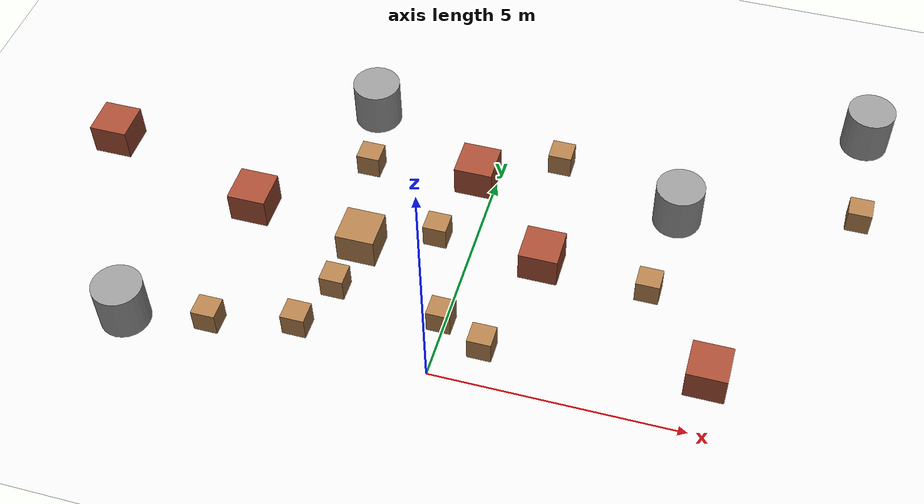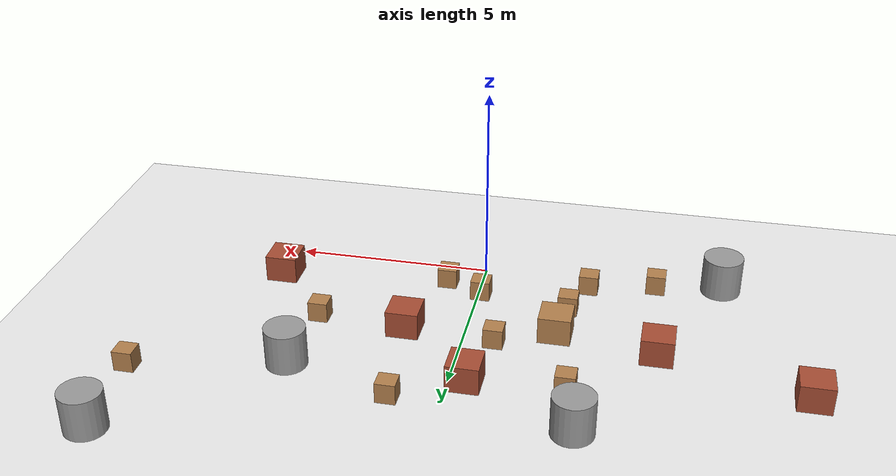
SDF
<sdf version="1.6">
 <world name="default">
  <model name="ground_plane">
   <static>1</static>
   <link name="link">
    <collision name="collision">
     <geometry><plane><normal>0 0 1</normal><size>100 100</size></plane></geometry>
     <surface><friction><ode><mu>100</mu><mu2>50</mu2></ode></friction></surface>
    </collision>
    <visual name="visual">
     <cast_shadows>0</cast_shadows>
     <geometry><plane><normal>0 0 1</normal><size>100 100</size></plane></geometry>
     <material>
      <script><uri>file://media/materials/scripts/gazebo.material</uri><name>Gazebo/White</name></script>
     </material>
    </visual>
   </link>
  </model>
  <model name="Box">
   <link name="link">
    <inertial>
     <mass>0.01</mass>
     <inertia>
      <ixx>0.00455697</ixx>
      <ixy>0</ixy>
      <ixz>0</ixz>
      <iyy>0.00475558</iyy>
      <iyz>0</iyz>
      <izz>0.00426137</izz>
     </inertia>
    </inertial>
    <visual name="visual">
     <geometry><box><size>0.483208 0.461193 0.514245</size></box></geometry>
     <material>
      <script><name>Gazebo/WoodFloor</name><uri>file://media/materials/scripts/gazebo.material</uri></script>
      <ambient>0.3 0.3 0.3 1</ambient>
      <diffuse>0.7 0.7 0.7 1</diffuse>
      <specular>0.01 0.01 0.01 1</specular>
      <emissive>0 0 0 1</emissive>
     </material>
    </visual>
    <collision name="collision">
     <geometry><box><size>0.483208 0.461193 0.514245</size></box></geometry>
     <surface>
      <friction>
       <ode><mu>1</mu><mu2>1</mu2><fdir1>0 0 0</fdir1><slip1>0</slip1><slip2>0</slip2></ode>
       <torsional>
        <coefficient>1</coefficient>
        <patch_radius>0</patch_radius>
        <surface_radius>0</surface_radius>
        <use_patch_radius>1</use_patch_radius>
        <ode><slip>0</slip></ode>
       </torsional>
      </friction>
      <bounce><restitution_coefficient>0</restitution_coefficient><threshold>1e+06</threshold></bounce>
      <contact>
       <collide_without_contact>0</collide_without_contact>
       <collide_without_contact_bitmask>1</collide_without_contact_bitmask>
       <collide_bitmask>1</collide_bitmask>
       <ode>
        <soft_cfm>0</soft_cfm>
        <soft_erp>0.2</soft_erp>
        <kp>1e+13</kp>
        <kd>1</kd>
        <max_vel>0.01</max_vel>
        <min_depth>0</min_depth>
       </ode>
       <bullet>
        <split_impulse>1</split_impulse>
        <split_impulse_penetration_threshold>-0.01</split_impulse_penetration_threshold>
        <soft_cfm>0</soft_cfm>
        <soft_erp>0.2</soft_erp>
        <kp>1e+13</kp>
        <kd>1</kd>
       </bullet>
      </contact>
     </surface>
    </collision>
   </link>
   <static>0</static>
   <pose>-2.73541 0.399797 0.257122 0 -0 0</pose>
  </model>
  <model name="Box_1">
   <link name="link">
    <inertial>
     <mass>0.01</mass>
     <inertia>
      <ixx>0.00455697</ixx>
      <ixy>0</ixy>
      <ixz>0</ixz>
      <iyy>0.00475558</iyy>
      <iyz>0</iyz>
      <izz>0.00426137</izz>
     </inertia>
    </inertial>
    <visual name="visual">
     <geometry><box><size>0.483208 0.461193 0.514245</size></box></geometry>
     <material>
      <script><name>Gazebo/WoodFloor</name><uri>file://media/materials/scripts/gazebo.material</uri></script>
      <ambient>0.3 0.3 0.3 1</ambient>
      <diffuse>0.7 0.7 0.7 1</diffuse>
      <specular>0.01 0.01 0.01 1</specular>
      <emissive>0 0 0 1</emissive>
     </material>
    </visual>
    <collision name="collision">
     <geometry><box><size>0.483208 0.461193 0.514245</size></box></geometry>
     <surface>
      <friction>
       <ode><mu>1</mu><mu2>1</mu2><fdir1>0 0 0</fdir1><slip1>0</slip1><slip2>0</slip2></ode>
       <torsional>
        <coefficient>1</coefficient>
        <patch_radius>0</patch_radius>
        <surface_radius>0</surface_radius>
        <use_patch_radius>1</use_patch_radius>
        <ode><slip>0</slip></ode>
       </torsional>
      </friction>
      <bounce><restitution_coefficient>0</restitution_coefficient><threshold>1e+06</threshold></bounce>
      <contact>
       <collide_without_contact>0</collide_without_contact>
       <collide_without_contact_bitmask>1</collide_without_contact_bitmask>
       <collide_bitmask>1</collide_bitmask>
       <ode>
        <soft_cfm>0</soft_cfm>
        <soft_erp>0.2</soft_erp>
        <kp>1e+13</kp>
        <kd>1</kd>
        <max_vel>0.01</max_vel>
        <min_depth>0</min_depth>
       </ode>
       <bullet>
        <split_impulse>1</split_impulse>
        <split_impulse_penetration_threshold>-0.01</split_impulse_penetration_threshold>
        <soft_cfm>0</soft_cfm>
        <soft_erp>0.2</soft_erp>
        <kp>1e+13</kp>
        <kd>1</kd>
       </bullet>
      </contact>
     </surface>
    </collision>
   </link>
   <static>0</static>
   <pose>0.855063 0.802123 0.257122 0 -0 0</pose>
  </model>
  <model name="HeavyBox">
   <link name="link">
    <inertial>
     <mass>0.0579948</mass>
     <inertia>
      <ixx>0.0402452</ixx>
      <ixy>0</ixy>
      <ixz>0</ixz>
      <iyy>0.0399236</iyy>
      <iyz>0</iyz>
      <izz>0.0461707</izz>
     </inertia>
    </inertial>
    <visual name="visual">
     <geometry><box><size>0.79482 0.800386 0.684447</size></box></geometry>
     <material>
      <script><name>Gazebo/WoodFloor</name><uri>file://media/materials/scripts/gazebo.material</uri></script>
      <ambient>0.3 0.3 0.3 1</ambient>
      <diffuse>0.7 0.7 0.7 1</diffuse>
      <specular>0.01 0.01 0.01 1</specular>
      <emissive>0 0 0 1</emissive>
     </material>
    </visual>
    <collision name="collision">
     <geometry><box><size>0.79482 0.800386 0.684447</size></box></geometry>
     <surface>
      <friction>
       <ode><mu>1</mu><mu2>1</mu2><fdir1>0 0 0</fdir1><slip1>0</slip1><slip2>0</slip2></ode>
       <torsional>
        <coefficient>1</coefficient>
        <patch_radius>0</patch_radius>
        <surface_radius>0</surface_radius>
        <use_patch_radius>1</use_patch_radius>
        <ode><slip>0</slip></ode>
       </torsional>
      </friction>
      <bounce><restitution_coefficient>0</restitution_coefficient><threshold>1e+06</threshold></bounce>
      <contact>
       <collide_without_contact>0</collide_without_contact>
       <collide_without_contact_bitmask>1</collide_without_contact_bitmask>
       <collide_bitmask>1</collide_bitmask>
       <ode>
        <soft_cfm>0</soft_cfm>
        <soft_erp>0.2</soft_erp>
        <kp>1e+13</kp>
        <kd>1</kd>
        <max_vel>0.01</max_vel>
        <min_depth>0</min_depth>
       </ode>
       <bullet>
        <split_impulse>1</split_impulse>
        <split_impulse_penetration_threshold>-0.01</split_impulse_penetration_threshold>
        <soft_cfm>0</soft_cfm>
        <soft_erp>0.2</soft_erp>
        <kp>1e+13</kp>
        <kd>1</kd>
       </bullet>
      </contact>
     </surface>
    </collision>
   </link>
   <static>0</static>
   <pose>-2.17372 2.61263 0.342223 0 -0 0</pose>
  </model>
  <model name="Box_2">
   <link name="link">
    <inertial>
     <mass>0.01</mass>
     <inertia>
      <ixx>0.00455697</ixx>
      <ixy>0</ixy>
      <ixz>0</ixz>
      <iyy>0.00475558</iyy>
      <iyz>0</iyz>
      <izz>0.00426137</izz>
     </inertia>
    </inertial>
    <visual name="visual">
     <geometry><box><size>0.483208 0.461193 0.514245</size></box></geometry>
     <material>
      <script><name>Gazebo/WoodFloor</name><uri>file://media/materials/scripts/gazebo.material</uri></script>
      <ambient>0.3 0.3 0.3 1</ambient>
      <diffuse>0.7 0.7 0.7 1</diffuse>
      <specular>0.01 0.01 0.01 1</specular>
      <emissive>0 0 0 1</emissive>
     </material>
    </visual>
    <collision name="collision">
     <geometry><box><size>0.483208 0.461193 0.514245</size></box></geometry>
     <surface>
      <friction>
       <ode><mu>1</mu><mu2>1</mu2><fdir1>0 0 0</fdir1><slip1>0</slip1><slip2>0</slip2></ode>
       <torsional>
        <coefficient>1</coefficient>
        <patch_radius>0</patch_radius>
        <surface_radius>0</surface_radius>
        <use_patch_radius>1</use_patch_radius>
        <ode><slip>0</slip></ode>
       </torsional>
      </friction>
      <bounce><restitution_coefficient>0</restitution_coefficient><threshold>1e+06</threshold></bounce>
      <contact>
       <collide_without_contact>0</collide_without_contact>
       <collide_without_contact_bitmask>1</collide_without_contact_bitmask>
       <collide_bitmask>1</collide_bitmask>
       <ode>
        <soft_cfm>0</soft_cfm>
        <soft_erp>0.2</soft_erp>
        <kp>1e+13</kp>
        <kd>1</kd>
        <max_vel>0.01</max_vel>
        <min_depth>0</min_depth>
       </ode>
       <bullet>
        <split_impulse>1</split_impulse>
        <split_impulse_penetration_threshold>-0.01</split_impulse_penetration_threshold>
        <soft_cfm>0</soft_cfm>
        <soft_erp>0.2</soft_erp>
        <kp>1e+13</kp>
        <kd>1</kd>
       </bullet>
      </contact>
     </surface>
    </collision>
   </link>
   <static>0</static>
   <pose>-2.33619 1.48041 0.257122 0 -0 0</pose>
  </model>
  <model name="Box_3">
   <link name="link">
    <inertial>
     <mass>0.01</mass>
     <inertia>
      <ixx>0.00455697</ixx>
      <ixy>0</ixy>
      <ixz>0</ixz>
      <iyy>0.00475558</iyy>
      <iyz>0</iyz>
      <izz>0.00426137</izz>
     </inertia>
    </inertial>
    <visual name="visual">
     <geometry><box><size>0.483208 0.461193 0.514245</size></box></geometry>
     <material>
      <script><name>Gazebo/WoodFloor</name><uri>file://media/materials/scripts/gazebo.material</uri></script>
      <ambient>0.3 0.3 0.3 1</ambient>
      <diffuse>0.7 0.7 0.7 1</diffuse>
      <specular>0.01 0.01 0.01 1</specular>
      <emissive>0 0 0 1</emissive>
     </material>
    </visual>
    <collision name="collision">
     <geometry><box><size>0.483208 0.461193 0.514245</size></box></geometry>
     <surface>
      <friction>
       <ode><mu>1</mu><mu2>1</mu2><fdir1>0 0 0</fdir1><slip1>0</slip1><slip2>0</slip2></ode>
       <torsional>
        <coefficient>1</coefficient>
        <patch_radius>0</patch_radius>
        <surface_radius>0</surface_radius>
        <use_patch_radius>1</use_patch_radius>
        <ode><slip>0</slip></ode>
       </torsional>
      </friction>
      <bounce><restitution_coefficient>0</restitution_coefficient><threshold>1e+06</threshold></bounce>
      <contact>
       <collide_without_contact>0</collide_without_contact>
       <collide_without_contact_bitmask>1</collide_without_contact_bitmask>
       <collide_bitmask>1</collide_bitmask>
       <ode>
        <soft_cfm>0</soft_cfm>
        <soft_erp>0.2</soft_erp>
        <kp>1e+13</kp>
        <kd>1</kd>
        <max_vel>0.01</max_vel>
        <min_depth>0</min_depth>
       </ode>
       <bullet>
        <split_impulse>1</split_impulse>
        <split_impulse_penetration_threshold>-0.01</split_impulse_penetration_threshold>
        <soft_cfm>0</soft_cfm>
        <soft_erp>0.2</soft_erp>
        <kp>1e+13</kp>
        <kd>1</kd>
       </bullet>
      </contact>
     </surface>
    </collision>
   </link>
   <static>0</static>
   <pose>-0.078578 1.21617 0.257122 0 -0 0</pose>
  </model>
  <model name="HeavyBox_3">
   <link name="link">
    <inertial>
     <mass>2</mass>
     <inertia>
      <ixx>0.0402452</ixx>
      <ixy>0</ixy>
      <ixz>0</ixz>
      <iyy>0.0399236</iyy>
      <iyz>0</iyz>
      <izz>0.0461707</izz>
     </inertia>
    </inertial>
    <visual name="visual">
     <geometry><box><size>0.79482 0.800386 0.684447</size></box></geometry>
     <material>
      <script><name>Gazebo/Bricks</name><uri>file://media/materials/scripts/gazebo.material</uri></script>
      <ambient>0.3 0.3 0.3 1</ambient>
      <diffuse>0.7 0.7 0.7 1</diffuse>
      <specular>0.01 0.01 0.01 1</specular>
      <emissive>0 0 0 1</emissive>
     </material>
    </visual>
    <collision name="collision">
     <geometry><box><size>0.79482 0.800386 0.684447</size></box></geometry>
     <surface>
      <friction>
       <ode><mu>1</mu><mu2>1</mu2><fdir1>0 0 0</fdir1><slip1>0</slip1><slip2>0</slip2></ode>
       <torsional>
        <coefficient>1</coefficient>
        <patch_radius>0</patch_radius>
        <surface_radius>0</surface_radius>
        <use_patch_radius>1</use_patch_radius>
        <ode><slip>0</slip></ode>
       </torsional>
      </friction>
      <bounce><restitution_coefficient>0</restitution_coefficient><threshold>1e+06</threshold></bounce>
      <contact>
       <collide_without_contact>0</collide_without_contact>
       <collide_without_contact_bitmask>1</collide_without_contact_bitmask>
       <collide_bitmask>1</collide_bitmask>
       <ode>
        <soft_cfm>0</soft_cfm>
        <soft_erp>0.2</soft_erp>
        <kp>1e+13</kp>
        <kd>1</kd>
        <max_vel>0.01</max_vel>
        <min_depth>0</min_depth>
       </ode>
       <bullet>
        <split_impulse>1</split_impulse>
        <split_impulse_penetration_threshold>-0.01</split_impulse_penetration_threshold>
        <soft_cfm>0</soft_cfm>
        <soft_erp>0.2</soft_erp>
        <kp>1e+13</kp>
        <kd>1</kd>
       </bullet>
      </contact>
     </surface>
    </collision>
   </link>
   <static>0</static>
   <pose>-0.407093 4.96879 0.342224 -0 -1e-06 9.8e-05</pose>
  </model>
  <model name="HeavyBox_4">
   <link name="link">
    <inertial>
     <mass>2</mass>
     <inertia>
      <ixx>0.0402452</ixx>
      <ixy>0</ixy>
      <ixz>0</ixz>
      <iyy>0.0399236</iyy>
      <iyz>0</iyz>
      <izz>0.0461707</izz>
     </inertia>
    </inertial>
    <visual name="visual">
     <geometry><box><size>0.79482 0.800386 0.684447</size></box></geometry>
     <material>
      <script><name>Gazebo/Bricks</name><uri>file://media/materials/scripts/gazebo.material</uri></script>
      <ambient>0.3 0.3 0.3 1</ambient>
      <diffuse>0.7 0.7 0.7 1</diffuse>
      <specular>0.01 0.01 0.01 1</specular>
      <emissive>0 0 0 1</emissive>
     </material>
    </visual>
    <collision name="collision">
     <geometry><box><size>0.79482 0.800386 0.684447</size></box></geometry>
     <surface>
      <friction>
       <ode><mu>1</mu><mu2>1</mu2><fdir1>0 0 0</fdir1><slip1>0</slip1><slip2>0</slip2></ode>
       <torsional>
        <coefficient>1</coefficient>
        <patch_radius>0</patch_radius>
        <surface_radius>0</surface_radius>
        <use_patch_radius>1</use_patch_radius>
        <ode><slip>0</slip></ode>
       </torsional>
      </friction>
      <bounce><restitution_coefficient>0</restitution_coefficient><threshold>1e+06</threshold></bounce>
      <contact>
       <collide_without_contact>0</collide_without_contact>
       <collide_without_contact_bitmask>1</collide_without_contact_bitmask>
       <collide_bitmask>1</collide_bitmask>
       <ode>
        <soft_cfm>0</soft_cfm>
        <soft_erp>0.2</soft_erp>
        <kp>1e+13</kp>
        <kd>1</kd>
        <max_vel>0.01</max_vel>
        <min_depth>0</min_depth>
       </ode>
       <bullet>
        <split_impulse>1</split_impulse>
        <split_impulse_penetration_threshold>-0.01</split_impulse_penetration_threshold>
        <soft_cfm>0</soft_cfm>
        <soft_erp>0.2</soft_erp>
        <kp>1e+13</kp>
        <kd>1</kd>
       </bullet>
      </contact>
     </surface>
    </collision>
   </link>
   <static>0</static>
   <pose>1.45059 3.10798 0.342219 -0 1.1e-05 9.5e-05</pose>
  </model>
  <model name="HighRock_0">
   <link name="link_0">
    <inertial>
     <mass>5</mass>
     <inertia><ixx>0.145833</ixx><ixy>0</ixy><ixz>0</ixz><iyy>0.145833</iyy><iyz>0</iyz><izz>0.125</izz></inertia>
    </inertial>
    <visual name="visual">
     <geometry><cylinder><radius>0.5</radius><length>1</length></cylinder></geometry>
     <material>
      <lighting>1</lighting>
      <script><uri>file://media/materials/scripts/gazebo.material</uri><name>Gazebo/Gray</name></script>
      <ambient>0.3 0.3 0.3 1</ambient>
      <diffuse>0.7 0.7 0.7 1</diffuse>
      <specular>0.01 0.01 0.01 1</specular>
      <emissive>0 0 0 1</emissive>
     </material>
    </visual>
    <collision name="collision">
     <geometry><cylinder><radius>0.5</radius><length>1</length></cylinder></geometry>
     <surface>
      <friction>
       <ode><mu>1</mu><mu2>1</mu2><fdir1>0 0 0</fdir1><slip1>0</slip1><slip2>0</slip2></ode>
       <torsional>
        <coefficient>1</coefficient>
        <patch_radius>0</patch_radius>
        <surface_radius>0</surface_radius>
        <use_patch_radius>1</use_patch_radius>
        <ode><slip>0</slip></ode>
       </torsional>
      </friction>
      <bounce><restitution_coefficient>0</restitution_coefficient><threshold>1e+06</threshold></bounce>
      <contact>
       <collide_without_contact>0</collide_without_contact>
       <collide_without_contact_bitmask>1</collide_without_contact_bitmask>
       <collide_bitmask>1</collide_bitmask>
       <ode>
        <soft_cfm>0</soft_cfm>
        <soft_erp>0.2</soft_erp>
        <kp>1e+13</kp>
        <kd>1</kd>
        <max_vel>0.01</max_vel>
        <min_depth>0</min_depth>
       </ode>
       <bullet>
        <split_impulse>1</split_impulse>
        <split_impulse_penetration_threshold>-0.01</split_impulse_penetration_threshold>
        <soft_cfm>0</soft_cfm>
        <soft_erp>0.2</soft_erp>
        <kp>1e+13</kp>
        <kd>1</kd>
       </bullet>
      </contact>
     </surface>
    </collision>
   </link>
   <static>0</static>
   <pose>-6.0472 -0.275243 0.499991 -1e-06 1e-06 -1e-06</pose>
  </model>
  <model name="HighRock_2">
   <link name="link_0">
    <inertial>
     <mass>5</mass>
     <inertia><ixx>0.145833</ixx><ixy>0</ixy><ixz>0</ixz><iyy>0.145833</iyy><iyz>0</iyz><izz>0.125</izz></inertia>
    </inertial>
    <visual name="visual">
     <geometry><cylinder><radius>0.5</radius><length>1</length></cylinder></geometry>
     <material>
      <lighting>1</lighting>
      <script><uri>file://media/materials/scripts/gazebo.material</uri><name>Gazebo/Gray</name></script>
      <ambient>0.3 0.3 0.3 1</ambient>
      <diffuse>0.7 0.7 0.7 1</diffuse>
      <specular>0.01 0.01 0.01 1</specular>
      <emissive>0 0 0 1</emissive>
     </material>
    </visual>
    <collision name="collision">
     <geometry><cylinder><radius>0.5</radius><length>1</length></cylinder></geometry>
     <surface>
      <friction>
       <ode><mu>1</mu><mu2>1</mu2><fdir1>0 0 0</fdir1><slip1>0</slip1><slip2>0</slip2></ode>
       <torsional>
        <coefficient>1</coefficient>
        <patch_radius>0</patch_radius>
        <surface_radius>0</surface_radius>
        <use_patch_radius>1</use_patch_radius>
        <ode><slip>0</slip></ode>
       </torsional>
      </friction>
      <bounce><restitution_coefficient>0</restitution_coefficient><threshold>1e+06</threshold></bounce>
      <contact>
       <collide_without_contact>0</collide_without_contact>
       <collide_without_contact_bitmask>1</collide_without_contact_bitmask>
       <collide_bitmask>1</collide_bitmask>
       <ode>
        <soft_cfm>0</soft_cfm>
        <soft_erp>0.2</soft_erp>
        <kp>1e+13</kp>
        <kd>1</kd>
        <max_vel>0.01</max_vel>
        <min_depth>0</min_depth>
       </ode>
       <bullet>
        <split_impulse>1</split_impulse>
        <split_impulse_penetration_threshold>-0.01</split_impulse_penetration_threshold>
        <soft_cfm>0</soft_cfm>
        <soft_erp>0.2</soft_erp>
        <kp>1e+13</kp>
        <kd>1</kd>
       </bullet>
      </contact>
     </surface>
    </collision>
   </link>
   <static>0</static>
   <pose>3.82885 5.04476 0.499991 -1e-06 -0 -1e-06</pose>
  </model>
  <model name="HighRock_3">
   <link name="link_0">
    <inertial>
     <mass>5</mass>
     <inertia><ixx>0.145833</ixx><ixy>0</ixy><ixz>0</ixz><iyy>0.145833</iyy><iyz>0</iyz><izz>0.125</izz></inertia>
    </inertial>
    <visual name="visual">
     <geometry><cylinder><radius>0.5</radius><length>1</length></cylinder></geometry>
     <material>
      <lighting>1</lighting>
      <script><uri>file://media/materials/scripts/gazebo.material</uri><name>Gazebo/Gray</name></script>
      <ambient>0.3 0.3 0.3 1</ambient>
      <diffuse>0.7 0.7 0.7 1</diffuse>
      <specular>0.01 0.01 0.01 1</specular>
      <emissive>0 0 0 1</emissive>
     </material>
    </visual>
    <collision name="collision">
     <geometry><cylinder><radius>0.5</radius><length>1</length></cylinder></geometry>
     <surface>
      <friction>
       <ode><mu>1</mu><mu2>1</mu2><fdir1>0 0 0</fdir1><slip1>0</slip1><slip2>0</slip2></ode>
       <torsional>
        <coefficient>1</coefficient>
        <patch_radius>0</patch_radius>
        <surface_radius>0</surface_radius>
        <use_patch_radius>1</use_patch_radius>
        <ode><slip>0</slip></ode>
       </torsional>
      </friction>
      <bounce><restitution_coefficient>0</restitution_coefficient><threshold>1e+06</threshold></bounce>
      <contact>
       <collide_without_contact>0</collide_without_contact>
       <collide_without_contact_bitmask>1</collide_without_contact_bitmask>
       <collide_bitmask>1</collide_bitmask>
       <ode>
        <soft_cfm>0</soft_cfm>
        <soft_erp>0.2</soft_erp>
        <kp>1e+13</kp>
        <kd>1</kd>
        <max_vel>0.01</max_vel>
        <min_depth>0</min_depth>
       </ode>
       <bullet>
        <split_impulse>1</split_impulse>
        <split_impulse_penetration_threshold>-0.01</split_impulse_penetration_threshold>
        <soft_cfm>0</soft_cfm>
        <soft_erp>0.2</soft_erp>
        <kp>1e+13</kp>
        <kd>1</kd>
       </bullet>
      </contact>
     </surface>
    </collision>
   </link>
   <static>0</static>
   <pose>-3.03058 6.26791 0.499999 0 0 -1e-06</pose>
  </model>
  <model name="HeavyBox_5">
   <link name="link">
    <inertial>
     <mass>2</mass>
     <inertia>
      <ixx>0.0402452</ixx>
      <ixy>0</ixy>
      <ixz>0</ixz>
      <iyy>0.0399236</iyy>
      <iyz>0</iyz>
      <izz>0.0461707</izz>
     </inertia>
    </inertial>
    <visual name="visual">
     <geometry><box><size>0.79482 0.800386 0.684447</size></box></geometry>
     <material>
      <script><name>Gazebo/Bricks</name><uri>file://media/materials/scripts/gazebo.material</uri></script>
      <ambient>0.3 0.3 0.3 1</ambient>
      <diffuse>0.7 0.7 0.7 1</diffuse>
      <specular>0.01 0.01 0.01 1</specular>
      <emissive>0 0 0 1</emissive>
     </material>
    </visual>
    <collision name="collision">
     <geometry><box><size>0.79482 0.800386 0.684447</size></box></geometry>
     <surface>
      <friction>
       <ode><mu>1</mu><mu2>1</mu2><fdir1>0 0 0</fdir1><slip1>0</slip1><slip2>0</slip2></ode>
       <torsional>
        <coefficient>1</coefficient>
        <patch_radius>0</patch_radius>
        <surface_radius>0</surface_radius>
        <use_patch_radius>1</use_patch_radius>
        <ode><slip>0</slip></ode>
       </torsional>
      </friction>
      <bounce><restitution_coefficient>0</restitution_coefficient><threshold>1e+06</threshold></bounce>
      <contact>
       <collide_without_contact>0</collide_without_contact>
       <collide_without_contact_bitmask>1</collide_without_contact_bitmask>
       <collide_bitmask>1</collide_bitmask>
       <ode>
        <soft_cfm>0</soft_cfm>
        <soft_erp>0.2</soft_erp>
        <kp>1e+13</kp>
        <kd>1</kd>
        <max_vel>0.01</max_vel>
        <min_depth>0</min_depth>
       </ode>
       <bullet>
        <split_impulse>1</split_impulse>
        <split_impulse_penetration_threshold>-0.01</split_impulse_penetration_threshold>
        <soft_cfm>0</soft_cfm>
        <soft_erp>0.2</soft_erp>
        <kp>1e+13</kp>
        <kd>1</kd>
       </bullet>
      </contact>
     </surface>
    </collision>
   </link>
   <static>0</static>
   <pose>-4.63867 3.03846 0.342224 0 -1e-06 7.1e-05</pose>
  </model>
  <model name="HeavyBox_7">
   <link name="link">
    <inertial>
     <mass>2</mass>
     <inertia>
      <ixx>0.0402452</ixx>
      <ixy>0</ixy>
      <ixz>0</ixz>
      <iyy>0.0399236</iyy>
      <iyz>0</iyz>
      <izz>0.0461707</izz>
     </inertia>
    </inertial>
    <visual name="visual">
     <geometry><box><size>0.79482 0.800386 0.684447</size></box></geometry>
     <material>
      <script><name>Gazebo/Bricks</name><uri>file://media/materials/scripts/gazebo.material</uri></script>
      <ambient>0.3 0.3 0.3 1</ambient>
      <diffuse>0.7 0.7 0.7 1</diffuse>
      <specular>0.01 0.01 0.01 1</specular>
      <emissive>0 0 0 1</emissive>
     </material>
    </visual>
    <collision name="collision">
     <geometry><box><size>0.79482 0.800386 0.684447</size></box></geometry>
     <surface>
      <friction>
       <ode><mu>1</mu><mu2>1</mu2><fdir1>0 0 0</fdir1><slip1>0</slip1><slip2>0</slip2></ode>
       <torsional>
        <coefficient>1</coefficient>
        <patch_radius>0</patch_radius>
        <surface_radius>0</surface_radius>
        <use_patch_radius>1</use_patch_radius>
        <ode><slip>0</slip></ode>
       </torsional>
      </friction>
      <bounce><restitution_coefficient>0</restitution_coefficient><threshold>1e+06</threshold></bounce>
      <contact>
       <collide_without_contact>0</collide_without_contact>
       <collide_without_contact_bitmask>1</collide_without_contact_bitmask>
       <collide_bitmask>1</collide_bitmask>
       <ode>
        <soft_cfm>0</soft_cfm>
        <soft_erp>0.2</soft_erp>
        <kp>1e+13</kp>
        <kd>1</kd>
        <max_vel>0.01</max_vel>
        <min_depth>0</min_depth>
       </ode>
       <bullet>
        <split_impulse>1</split_impulse>
        <split_impulse_penetration_threshold>-0.01</split_impulse_penetration_threshold>
        <soft_cfm>0</soft_cfm>
        <soft_erp>0.2</soft_erp>
        <kp>1e+13</kp>
        <kd>1</kd>
       </bullet>
      </contact>
     </surface>
    </collision>
   </link>
   <static>0</static>
   <pose>5.12892 1.20649 0.342224 0 1e-06 6.4e-05</pose>
  </model>
  <model name="Box_6">
   <link name="link">
    <inertial>
     <mass>0.01</mass>
     <inertia>
      <ixx>0.00455697</ixx>
      <ixy>0</ixy>
      <ixz>0</ixz>
      <iyy>0.00475558</iyy>
      <iyz>0</iyz>
      <izz>0.00426137</izz>
     </inertia>
    </inertial>
    <visual name="visual">
     <geometry><box><size>0.483208 0.461193 0.514245</size></box></geometry>
     <material>
      <script><name>Gazebo/WoodFloor</name><uri>file://media/materials/scripts/gazebo.material</uri></script>
      <ambient>0.3 0.3 0.3 1</ambient>
      <diffuse>0.7 0.7 0.7 1</diffuse>
      <specular>0.01 0.01 0.01 1</specular>
      <emissive>0 0 0 1</emissive>
     </material>
    </visual>
    <collision name="collision">
     <geometry><box><size>0.483208 0.461193 0.514245</size></box></geometry>
     <surface>
      <friction>
       <ode><mu>1</mu><mu2>1</mu2><fdir1>0 0 0</fdir1><slip1>0</slip1><slip2>0</slip2></ode>
       <torsional>
        <coefficient>1</coefficient>
        <patch_radius>0</patch_radius>
        <surface_radius>0</surface_radius>
        <use_patch_radius>1</use_patch_radius>
        <ode><slip>0</slip></ode>
       </torsional>
      </friction>
      <bounce><restitution_coefficient>0</restitution_coefficient><threshold>1e+06</threshold></bounce>
      <contact>
       <collide_without_contact>0</collide_without_contact>
       <collide_without_contact_bitmask>1</collide_without_contact_bitmask>
       <collide_bitmask>1</collide_bitmask>
       <ode>
        <soft_cfm>0</soft_cfm>
        <soft_erp>0.2</soft_erp>
        <kp>1e+13</kp>
        <kd>1</kd>
        <max_vel>0.01</max_vel>
        <min_depth>0</min_depth>
       </ode>
       <bullet>
        <split_impulse>1</split_impulse>
        <split_impulse_penetration_threshold>-0.01</split_impulse_penetration_threshold>
        <soft_cfm>0</soft_cfm>
        <soft_erp>0.2</soft_erp>
        <kp>1e+13</kp>
        <kd>1</kd>
       </bullet>
      </contact>
     </surface>
    </collision>
   </link>
   <static>0</static>
   <pose>1.18675 5.863 0.257122 0 -0 0</pose>
  </model>
  <model name="Box_7">
   <link name="link">
    <inertial>
     <mass>0.01</mass>
     <inertia>
      <ixx>0.00455697</ixx>
      <ixy>0</ixy>
      <ixz>0</ixz>
      <iyy>0.00475558</iyy>
      <iyz>0</iyz>
      <izz>0.00426137</izz>
     </inertia>
    </inertial>
    <visual name="visual">
     <geometry><box><size>0.483208 0.461193 0.514245</size></box></geometry>
     <material>
      <script><name>Gazebo/WoodFloor</name><uri>file://media/materials/scripts/gazebo.material</uri></script>
      <ambient>0.3 0.3 0.3 1</ambient>
      <diffuse>0.7 0.7 0.7 1</diffuse>
      <specular>0.01 0.01 0.01 1</specular>
      <emissive>0 0 0 1</emissive>
     </material>
    </visual>
    <collision name="collision">
     <geometry><box><size>0.483208 0.461193 0.514245</size></box></geometry>
     <surface>
      <friction>
       <ode><mu>1</mu><mu2>1</mu2><fdir1>0 0 0</fdir1><slip1>0</slip1><slip2>0</slip2></ode>
       <torsional>
        <coefficient>1</coefficient>
        <patch_radius>0</patch_radius>
        <surface_radius>0</surface_radius>
        <use_patch_radius>1</use_patch_radius>
        <ode><slip>0</slip></ode>
       </torsional>
      </friction>
      <bounce><restitution_coefficient>0</restitution_coefficient><threshold>1e+06</threshold></bounce>
      <contact>
       <collide_without_contact>0</collide_without_contact>
       <collide_without_contact_bitmask>1</collide_without_contact_bitmask>
       <collide_bitmask>1</collide_bitmask>
       <ode>
        <soft_cfm>0</soft_cfm>
        <soft_erp>0.2</soft_erp>
        <kp>1e+13</kp>
        <kd>1</kd>
        <max_vel>0.01</max_vel>
        <min_depth>0</min_depth>
       </ode>
       <bullet>
        <split_impulse>1</split_impulse>
        <split_impulse_penetration_threshold>-0.01</split_impulse_penetration_threshold>
        <soft_cfm>0</soft_cfm>
        <soft_erp>0.2</soft_erp>
        <kp>1e+13</kp>
        <kd>1</kd>
       </bullet>
      </contact>
     </surface>
    </collision>
   </link>
   <static>0</static>
   <pose>3.64377 2.99397 0.257122 0 -0 0</pose>
  </model>
  <model name="Box_8">
   <link name="link">
    <inertial>
     <mass>0.01</mass>
     <inertia>
      <ixx>0.00455697</ixx>
      <ixy>0</ixy>
      <ixz>0</ixz>
      <iyy>0.00475558</iyy>
      <iyz>0</iyz>
      <izz>0.00426137</izz>
     </inertia>
    </inertial>
    <visual name="visual">
     <geometry><box><size>0.483208 0.461193 0.514245</size></box></geometry>
     <material>
      <script><name>Gazebo/WoodFloor</name><uri>file://media/materials/scripts/gazebo.material</uri></script>
      <ambient>0.3 0.3 0.3 1</ambient>
      <diffuse>0.7 0.7 0.7 1</diffuse>
      <specular>0.01 0.01 0.01 1</specular>
      <emissive>0 0 0 1</emissive>
     </material>
    </visual>
    <collision name="collision">
     <geometry><box><size>0.483208 0.461193 0.514245</size></box></geometry>
     <surface>
      <friction>
       <ode><mu>1</mu><mu2>1</mu2><fdir1>0 0 0</fdir1><slip1>0</slip1><slip2>0</slip2></ode>
       <torsional>
        <coefficient>1</coefficient>
        <patch_radius>0</patch_radius>
        <surface_radius>0</surface_radius>
        <use_patch_radius>1</use_patch_radius>
        <ode><slip>0</slip></ode>
       </torsional>
      </friction>
      <bounce><restitution_coefficient>0</restitution_coefficient><threshold>1e+06</threshold></bounce>
      <contact>
       <collide_without_contact>0</collide_without_contact>
       <collide_without_contact_bitmask>1</collide_without_contact_bitmask>
       <collide_bitmask>1</collide_bitmask>
       <ode>
        <soft_cfm>0</soft_cfm>
        <soft_erp>0.2</soft_erp>
        <kp>1e+13</kp>
        <kd>1</kd>
        <max_vel>0.01</max_vel>
        <min_depth>0</min_depth>
       </ode>
       <bullet>
        <split_impulse>1</split_impulse>
        <split_impulse_penetration_threshold>-0.01</split_impulse_penetration_threshold>
        <soft_cfm>0</soft_cfm>
        <soft_erp>0.2</soft_erp>
        <kp>1e+13</kp>
        <kd>1</kd>
       </bullet>
      </contact>
     </surface>
    </collision>
   </link>
   <static>0</static>
   <pose>-2.69032 4.77562 0.257122 0 -0 0</pose>
  </model>
  <model name="Box_9">
   <link name="link">
    <inertial>
     <mass>0.01</mass>
     <inertia>
      <ixx>0.00455697</ixx>
      <ixy>0</ixy>
      <ixz>0</ixz>
      <iyy>0.00475558</iyy>
      <iyz>0</iyz>
      <izz>0.00426137</izz>
     </inertia>
    </inertial>
    <visual name="visual">
     <geometry><box><size>0.483208 0.461193 0.514245</size></box></geometry>
     <material>
      <script><name>Gazebo/WoodFloor</name><uri>file://media/materials/scripts/gazebo.material</uri></script>
      <ambient>0.3 0.3 0.3 1</ambient>
      <diffuse>0.7 0.7 0.7 1</diffuse>
      <specular>0.01 0.01 0.01 1</specular>
      <emissive>0 0 0 1</emissive>
     </material>
    </visual>
    <collision name="collision">
     <geometry><box><size>0.483208 0.461193 0.514245</size></box></geometry>
     <surface>
      <friction>
       <ode><mu>1</mu><mu2>1</mu2><fdir1>0 0 0</fdir1><slip1>0</slip1><slip2>0</slip2></ode>
       <torsional>
        <coefficient>1</coefficient>
        <patch_radius>0</patch_radius>
        <surface_radius>0</surface_radius>
        <use_patch_radius>1</use_patch_radius>
        <ode><slip>0</slip></ode>
       </torsional>
      </friction>
      <bounce><restitution_coefficient>0</restitution_coefficient><threshold>1e+06</threshold></bounce>
      <contact>
       <collide_without_contact>0</collide_without_contact>
       <collide_without_contact_bitmask>1</collide_without_contact_bitmask>
       <collide_bitmask>1</collide_bitmask>
       <ode>
        <soft_cfm>0</soft_cfm>
        <soft_erp>0.2</soft_erp>
        <kp>1e+13</kp>
        <kd>1</kd>
        <max_vel>0.01</max_vel>
        <min_depth>0</min_depth>
       </ode>
       <bullet>
        <split_impulse>1</split_impulse>
        <split_impulse_penetration_threshold>-0.01</split_impulse_penetration_threshold>
        <soft_cfm>0</soft_cfm>
        <soft_erp>0.2</soft_erp>
        <kp>1e+13</kp>
        <kd>1</kd>
       </bullet>
      </contact>
     </surface>
    </collision>
   </link>
   <static>0</static>
   <pose>-0.773604 3.26762 0.257122 0 -0 0</pose>
  </model>
  <model name="Box_10">
   <link name="link">
    <inertial>
     <mass>0.01</mass>
     <inertia>
      <ixx>0.00455697</ixx>
      <ixy>0</ixy>
      <ixz>0</ixz>
      <iyy>0.00475558</iyy>
      <iyz>0</iyz>
      <izz>0.00426137</izz>
     </inertia>
    </inertial>
    <visual name="visual">
     <geometry><box><size>0.483208 0.461193 0.514245</size></box></geometry>
     <material>
      <script><name>Gazebo/WoodFloor</name><uri>file://media/materials/scripts/gazebo.material</uri></script>
      <ambient>0.3 0.3 0.3 1</ambient>
      <diffuse>0.7 0.7 0.7 1</diffuse>
      <specular>0.01 0.01 0.01 1</specular>
      <emissive>0 0 0 1</emissive>
     </material>
    </visual>
    <collision name="collision">
     <geometry><box><size>0.483208 0.461193 0.514245</size></box></geometry>
     <surface>
      <friction>
       <ode><mu>1</mu><mu2>1</mu2><fdir1>0 0 0</fdir1><slip1>0</slip1><slip2>0</slip2></ode>
       <torsional>
        <coefficient>1</coefficient>
        <patch_radius>0</patch_radius>
        <surface_radius>0</surface_radius>
        <use_patch_radius>1</use_patch_radius>
        <ode><slip>0</slip></ode>
       </torsional>
      </friction>
      <bounce><restitution_coefficient>0</restitution_coefficient><threshold>1e+06</threshold></bounce>
      <contact>
       <collide_without_contact>0</collide_without_contact>
       <collide_without_contact_bitmask>1</collide_without_contact_bitmask>
       <collide_bitmask>1</collide_bitmask>
       <ode>
        <soft_cfm>0</soft_cfm>
        <soft_erp>0.2</soft_erp>
        <kp>1e+13</kp>
        <kd>1</kd>
        <max_vel>0.01</max_vel>
        <min_depth>0</min_depth>
       </ode>
       <bullet>
        <split_impulse>1</split_impulse>
        <split_impulse_penetration_threshold>-0.01</split_impulse_penetration_threshold>
        <soft_cfm>0</soft_cfm>
        <soft_erp>0.2</soft_erp>
        <kp>1e+13</kp>
        <kd>1</kd>
       </bullet>
      </contact>
     </surface>
    </collision>
   </link>
   <static>0</static>
   <pose>-4.41656 0.042649 0.257122 0 -0 0</pose>
  </model>
  <model name="HighRock_5">
   <link name="link_0">
    <inertial>
     <mass>5</mass>
     <inertia><ixx>0.145833</ixx><ixy>0</ixy><ixz>0</ixz><iyy>0.145833</iyy><iyz>0</iyz><izz>0.125</izz></inertia>
    </inertial>
    <visual name="visual">
     <geometry><cylinder><radius>0.5</radius><length>1</length></cylinder></geometry>
     <material>
      <lighting>1</lighting>
      <script><uri>file://media/materials/scripts/gazebo.material</uri><name>Gazebo/Gray</name></script>
      <ambient>0.3 0.3 0.3 1</ambient>
      <diffuse>0.7 0.7 0.7 1</diffuse>
      <specular>0.01 0.01 0.01 1</specular>
      <emissive>0 0 0 1</emissive>
     </material>
    </visual>
    <collision name="collision">
     <geometry><cylinder><radius>0.5</radius><length>1</length></cylinder></geometry>
     <surface>
      <friction>
       <ode><mu>1</mu><mu2>1</mu2><fdir1>0 0 0</fdir1><slip1>0</slip1><slip2>0</slip2></ode>
       <torsional>
        <coefficient>1</coefficient>
        <patch_radius>0</patch_radius>
        <surface_radius>0</surface_radius>
        <use_patch_radius>1</use_patch_radius>
        <ode><slip>0</slip></ode>
       </torsional>
      </friction>
      <bounce><restitution_coefficient>0</restitution_coefficient><threshold>1e+06</threshold></bounce>
      <contact>
       <collide_without_contact>0</collide_without_contact>
       <collide_without_contact_bitmask>1</collide_without_contact_bitmask>
       <collide_bitmask>1</collide_bitmask>
       <ode>
        <soft_cfm>0</soft_cfm>
        <soft_erp>0.2</soft_erp>
        <kp>1e+13</kp>
        <kd>1</kd>
        <max_vel>0.01</max_vel>
        <min_depth>0</min_depth>
       </ode>
       <bullet>
        <split_impulse>1</split_impulse>
        <split_impulse_penetration_threshold>-0.01</split_impulse_penetration_threshold>
        <soft_cfm>0</soft_cfm>
        <soft_erp>0.2</soft_erp>
        <kp>1e+13</kp>
        <kd>1</kd>
       </bullet>
      </contact>
     </surface>
    </collision>
   </link>
   <static>0</static>
   <pose>7.31424 8.2459 0.5 1e-06 -0 0</pose>
  </model>
  <model name="Box_17">
   <link name="link">
    <inertial>
     <mass>0.01</mass>
     <inertia>
      <ixx>0.00455697</ixx>
      <ixy>0</ixy>
      <ixz>0</ixz>
      <iyy>0.00475558</iyy>
      <iyz>0</iyz>
      <izz>0.00426137</izz>
     </inertia>
    </inertial>
    <visual name="visual">
     <geometry><box><size>0.483208 0.461193 0.514245</size></box></geometry>
     <material>
      <script><name>Gazebo/WoodFloor</name><uri>file://media/materials/scripts/gazebo.material</uri></script>
      <ambient>0.3 0.3 0.3 1</ambient>
      <diffuse>0.7 0.7 0.7 1</diffuse>
      <specular>0.01 0.01 0.01 1</specular>
      <emissive>0 0 0 1</emissive>
     </material>
    </visual>
    <collision name="collision">
     <geometry><box><size>0.483208 0.461193 0.514245</size></box></geometry>
     <surface>
      <friction>
       <ode><mu>1</mu><mu2>1</mu2><fdir1>0 0 0</fdir1><slip1>0</slip1><slip2>0</slip2></ode>
       <torsional>
        <coefficient>1</coefficient>
        <patch_radius>0</patch_radius>
        <surface_radius>0</surface_radius>
        <use_patch_radius>1</use_patch_radius>
        <ode><slip>0</slip></ode>
       </torsional>
      </friction>
      <bounce><restitution_coefficient>0</restitution_coefficient><threshold>1e+06</threshold></bounce>
      <contact>
       <collide_without_contact>0</collide_without_contact>
       <collide_without_contact_bitmask>1</collide_without_contact_bitmask>
       <collide_bitmask>1</collide_bitmask>
       <ode>
        <soft_cfm>0</soft_cfm>
        <soft_erp>0.2</soft_erp>
        <kp>1e+13</kp>
        <kd>1</kd>
        <max_vel>0.01</max_vel>
        <min_depth>0</min_depth>
       </ode>
       <bullet>
        <split_impulse>1</split_impulse>
        <split_impulse_penetration_threshold>-0.01</split_impulse_penetration_threshold>
        <soft_cfm>0</soft_cfm>
        <soft_erp>0.2</soft_erp>
        <kp>1e+13</kp>
        <kd>1</kd>
       </bullet>
      </contact>
     </surface>
    </collision>
   </link>
   <static>0</static>
   <pose>7.4279 5.92372 0.257122 0 -0 0</pose>
  </model>
  <model name="HeavyBox_10">
   <link name="link">
    <inertial>
     <mass>2</mass>
     <inertia>
      <ixx>0.0402452</ixx>
      <ixy>0</ixy>
      <ixz>0</ixz>
      <iyy>0.0399236</iyy>
      <iyz>0</iyz>
      <izz>0.0461707</izz>
     </inertia>
    </inertial>
    <visual name="visual">
     <geometry><box><size>0.79482 0.800386 0.684447</size></box></geometry>
     <material>
      <script><name>Gazebo/Bricks</name><uri>file://media/materials/scripts/gazebo.material</uri></script>
      <ambient>0.3 0.3 0.3 1</ambient>
      <diffuse>0.7 0.7 0.7 1</diffuse>
      <specular>0.01 0.01 0.01 1</specular>
      <emissive>0 0 0 1</emissive>
     </material>
    </visual>
    <collision name="collision">
     <geometry><box><size>0.79482 0.800386 0.684447</size></box></geometry>
     <surface>
      <friction>
       <ode><mu>1</mu><mu2>1</mu2><fdir1>0 0 0</fdir1><slip1>0</slip1><slip2>0</slip2></ode>
       <torsional>
        <coefficient>1</coefficient>
        <patch_radius>0</patch_radius>
        <surface_radius>0</surface_radius>
        <use_patch_radius>1</use_patch_radius>
        <ode><slip>0</slip></ode>
       </torsional>
      </friction>
      <bounce><restitution_coefficient>0</restitution_coefficient><threshold>1e+06</threshold></bounce>
      <contact>
       <collide_without_contact>0</collide_without_contact>
       <collide_without_contact_bitmask>1</collide_without_contact_bitmask>
       <collide_bitmask>1</collide_bitmask>
       <ode>
        <soft_cfm>0</soft_cfm>
        <soft_erp>0.2</soft_erp>
        <kp>1e+13</kp>
        <kd>1</kd>
        <max_vel>0.01</max_vel>
        <min_depth>0</min_depth>
       </ode>
       <bullet>
        <split_impulse>1</split_impulse>
        <split_impulse_penetration_threshold>-0.01</split_impulse_penetration_threshold>
        <soft_cfm>0</soft_cfm>
        <soft_erp>0.2</soft_erp>
        <kp>1e+13</kp>
        <kd>1</kd>
       </bullet>
      </contact>
     </surface>
    </collision>
   </link>
   <static>0</static>
   <pose>-8.17682 4.08344 0.342224 0 1e-06 6e-06</pose>
  </model>
 </world>
</sdf>
